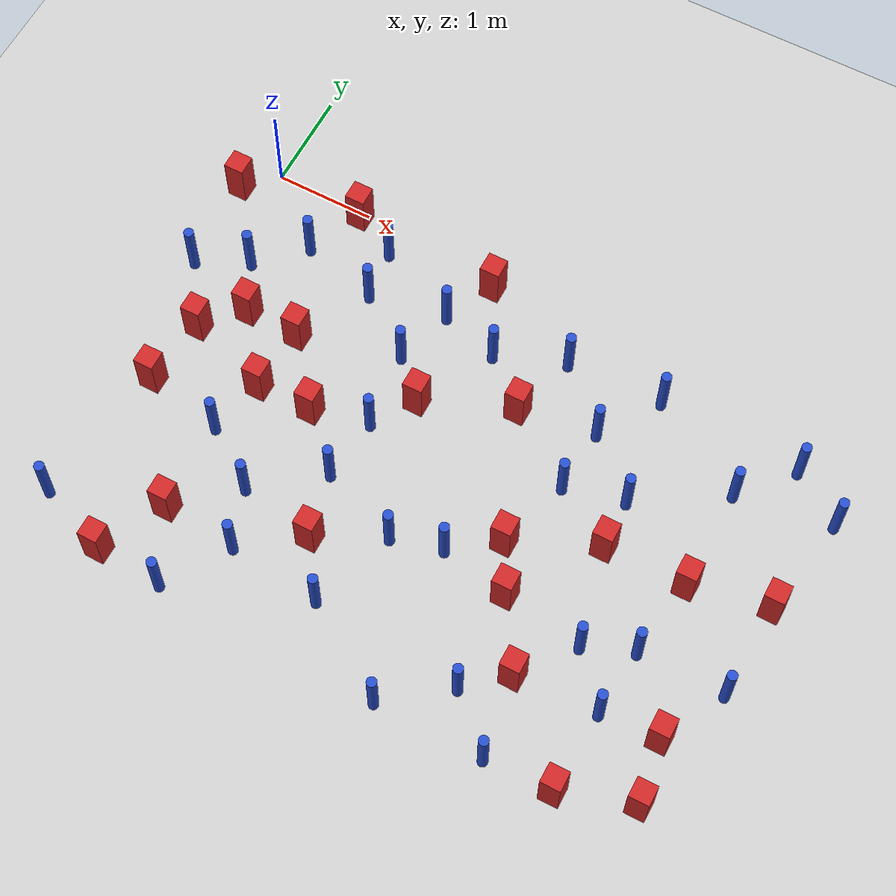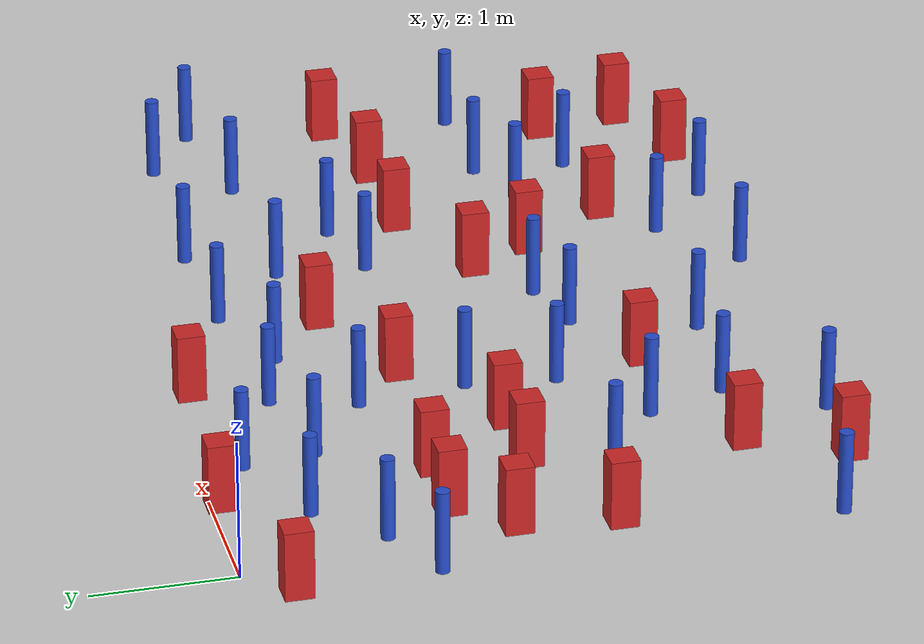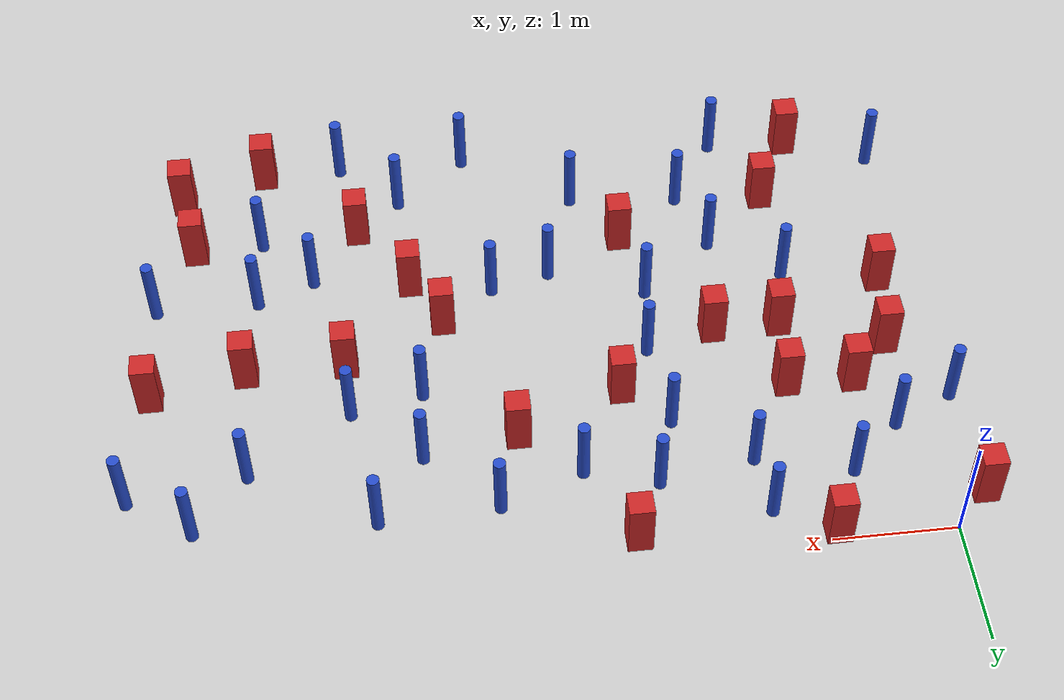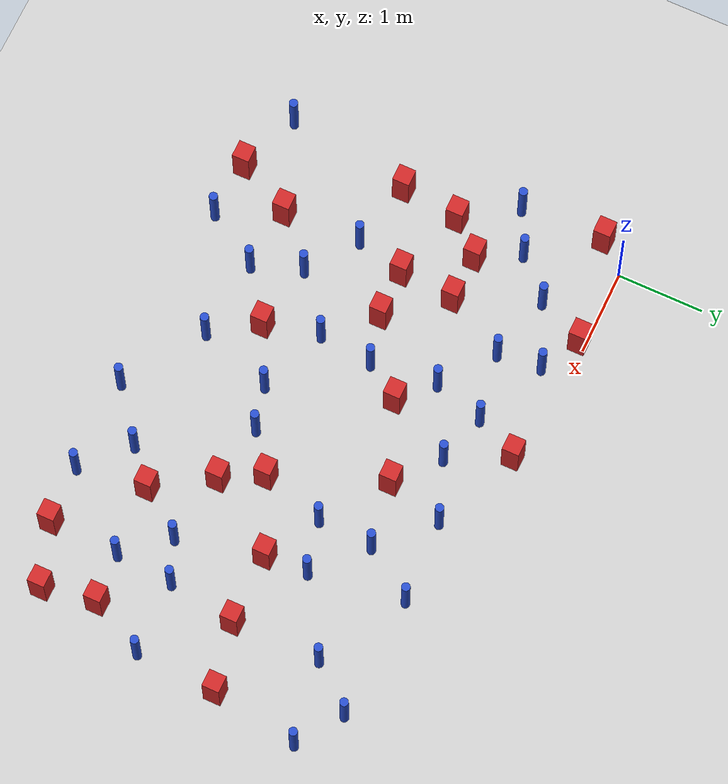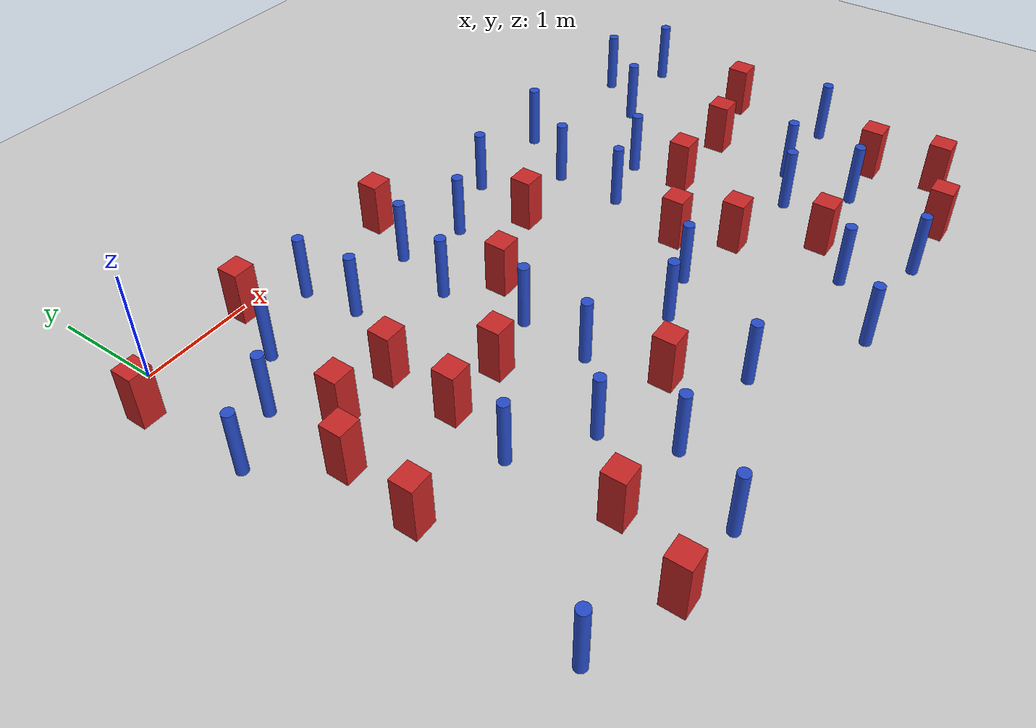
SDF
<sdf version="1.6">
 <world name="default">
  <model name="ground_plane">
   <static>1</static>
   <link name="link">
    <collision name="collision">
     <geometry><plane><normal>0 0 1</normal><size>100 100</size></plane></geometry>
     <surface><friction><ode><mu>100</mu><mu2>50</mu2></ode></friction></surface>
    </collision>
    <visual name="visual">
     <cast_shadows>0</cast_shadows>
     <geometry><plane><normal>0 0 1</normal><size>100 100</size></plane></geometry>
     <material>
      <ambient>1.0 1.0 1.0 1.0</ambient>
      <diffuse>0.8 0.8 0.8 1.0</diffuse>
      <specular>0.01 0.01 0.01 1.000000</specular>
     </material>
    </visual>
   </link>
  </model>
  <model name="pole_obstacle1">
   <static>true</static>
   <pose>5.37700357999 -2.93274806553 -9.47619616065e-06 5.49618799738e-07 2.36310414051e-07 -1.55090534805e-07</pose>
   <link name="link">
    <pose>0 0 0.3 0 -0 0</pose>
    <inertial>
     <mass>1</mass>
     <inertia><ixx>0.145833</ixx><ixy>0</ixy><ixz>0</ixz><iyy>0.145833</iyy><iyz>0</iyz><izz>0.125</izz></inertia>
    </inertial>
    <collision name="collision">
     <geometry><cylinder><radius>0.05</radius><length>.6</length></cylinder></geometry>
    </collision>
    <visual name="visual">
     <geometry><cylinder><radius>0.05</radius><length>.6</length></cylinder></geometry>
     <material>
      <script><name>Gazebo/Blue</name><uri>file://media/materials/scripts/gazebo.material</uri></script>
     </material>
    </visual>
   </link>
  </model>
  <model name="square_post_obstacle11">
   <static>true</static>
   <pose>3.31928973147 -1.26403502904 -6.11067671241e-07 -5.50515727128e-06 -8.79689657224e-07 2.37013304536e-05</pose>
   <link name="link">
    <pose>0 0 0.25 0 -0 0</pose>
    <inertial>
     <mass>100</mass>
     <inertia>
      <ixx>0.166667</ixx>
      <ixy>0</ixy>
      <ixz>0</ixz>
      <iyy>0.166667</iyy>
      <iyz>0</iyz>
      <izz>0.166667</izz>
     </inertia>
    </inertial>
    <collision name="collision"><geometry><box><size>.2 .2 .5</size></box></geometry></collision>
    <visual name="visual">
     <geometry><box><size>.2 .2 .5</size></box></geometry>
     <material>
      <script><name>Gazebo/Red</name><uri>file://media/materials/scripts/gazebo.material</uri></script>
     </material>
    </visual>
   </link>
  </model>
  <model name="pole_obstacle8">
   <static>true</static>
   <pose>-0.241706042491 -1.29657250172 -9.47619616065e-06 5.49618799738e-07 2.36310414065e-07 -1.55090534798e-07</pose>
   <link name="link">
    <pose>0 0 0.3 0 -0 0</pose>
    <inertial>
     <mass>1</mass>
     <inertia><ixx>0.145833</ixx><ixy>0</ixy><ixz>0</ixz><iyy>0.145833</iyy><iyz>0</iyz><izz>0.125</izz></inertia>
    </inertial>
    <collision name="collision">
     <geometry><cylinder><radius>0.05</radius><length>.6</length></cylinder></geometry>
    </collision>
    <visual name="visual">
     <geometry><cylinder><radius>0.05</radius><length>.6</length></cylinder></geometry>
     <material>
      <script><name>Gazebo/Blue</name><uri>file://media/materials/scripts/gazebo.material</uri></script>
     </material>
    </visual>
   </link>
  </model>
  <model name="pole_obstacle9">
   <static>true</static>
   <pose>3.38589451767 -2.86636324832 -9.47619616065e-06 5.49618799737e-07 2.36310414051e-07 -1.55090534807e-07</pose>
   <link name="link">
    <pose>0 0 0.3 0 -0 0</pose>
    <inertial>
     <mass>1</mass>
     <inertia><ixx>0.145833</ixx><ixy>0</ixy><ixz>0</ixz><iyy>0.145833</iyy><iyz>0</iyz><izz>0.125</izz></inertia>
    </inertial>
    <collision name="collision">
     <geometry><cylinder><radius>0.05</radius><length>.6</length></cylinder></geometry>
    </collision>
    <visual name="visual">
     <geometry><cylinder><radius>0.05</radius><length>.6</length></cylinder></geometry>
     <material>
      <script><name>Gazebo/Blue</name><uri>file://media/materials/scripts/gazebo.material</uri></script>
     </material>
    </visual>
   </link>
  </model>
  <model name="pole_obstacle16">
   <static>true</static>
   <pose>1.25358594625 -4.38906292499 -9.47619616065e-06 5.49618799737e-07 2.36310414061e-07 -1.550905348e-07</pose>
   <link name="link">
    <pose>0 0 0.3 0 -0 0</pose>
    <inertial>
     <mass>1</mass>
     <inertia><ixx>0.145833</ixx><ixy>0</ixy><ixz>0</ixz><iyy>0.145833</iyy><iyz>0</iyz><izz>0.125</izz></inertia>
    </inertial>
    <collision name="collision">
     <geometry><cylinder><radius>0.05</radius><length>.6</length></cylinder></geometry>
    </collision>
    <visual name="visual">
     <geometry><cylinder><radius>0.05</radius><length>.6</length></cylinder></geometry>
     <material>
      <script><name>Gazebo/Blue</name><uri>file://media/materials/scripts/gazebo.material</uri></script>
     </material>
    </visual>
   </link>
  </model>
  <model name="pole_obstacle32">
   <static>true</static>
   <pose>1.45785117095 -3.18774533088 -9.47619616065e-06 5.49618799737e-07 2.36310414062e-07 -1.55090534798e-07</pose>
   <link name="link">
    <pose>0 0 0.3 0 -0 0</pose>
    <inertial>
     <mass>1</mass>
     <inertia><ixx>0.145833</ixx><ixy>0</ixy><ixz>0</ixz><iyy>0.145833</iyy><iyz>0</iyz><izz>0.125</izz></inertia>
    </inertial>
    <collision name="collision">
     <geometry><cylinder><radius>0.05</radius><length>.6</length></cylinder></geometry>
    </collision>
    <visual name="visual">
     <geometry><cylinder><radius>0.05</radius><length>.6</length></cylinder></geometry>
     <material>
      <script><name>Gazebo/Blue</name><uri>file://media/materials/scripts/gazebo.material</uri></script>
     </material>
    </visual>
   </link>
  </model>
  <model name="pole_obstacle34">
   <static>true</static>
   <pose>0.882113052516 -2.77304466482 -9.47619616065e-06 5.49618799737e-07 2.36310414066e-07 -1.55090534797e-07</pose>
   <link name="link">
    <pose>0 0 0.3 0 -0 0</pose>
    <inertial>
     <mass>1</mass>
     <inertia><ixx>0.145833</ixx><ixy>0</ixy><ixz>0</ixz><iyy>0.145833</iyy><iyz>0</iyz><izz>0.125</izz></inertia>
    </inertial>
    <collision name="collision">
     <geometry><cylinder><radius>0.05</radius><length>.6</length></cylinder></geometry>
    </collision>
    <visual name="visual">
     <geometry><cylinder><radius>0.05</radius><length>.6</length></cylinder></geometry>
     <material>
      <script><name>Gazebo/Blue</name><uri>file://media/materials/scripts/gazebo.material</uri></script>
     </material>
    </visual>
   </link>
  </model>
  <model name="pole_obstacle41">
   <static>true</static>
   <pose>-0.143354518525 -4.06643775957 -9.47619616065e-06 5.49618799737e-07 2.36310414062e-07 -1.550905348e-07</pose>
   <link name="link">
    <pose>0 0 0.3 0 -0 0</pose>
    <inertial>
     <mass>1</mass>
     <inertia><ixx>0.145833</ixx><ixy>0</ixy><ixz>0</ixz><iyy>0.145833</iyy><iyz>0</iyz><izz>0.125</izz></inertia>
    </inertial>
    <collision name="collision">
     <geometry><cylinder><radius>0.05</radius><length>.6</length></cylinder></geometry>
    </collision>
    <visual name="visual">
     <geometry><cylinder><radius>0.05</radius><length>.6</length></cylinder></geometry>
     <material>
      <script><name>Gazebo/Blue</name><uri>file://media/materials/scripts/gazebo.material</uri></script>
     </material>
    </visual>
   </link>
  </model>
  <model name="square_post_obstacle49">
   <static>true</static>
   <pose>4.49373751798 -3.64777757025 -6.11067671241e-07 -5.50515727128e-06 -8.79689657224e-07 2.37013304536e-05</pose>
   <link name="link">
    <pose>0 0 0.25 0 -0 0</pose>
    <inertial>
     <mass>100</mass>
     <inertia>
      <ixx>0.166667</ixx>
      <ixy>0</ixy>
      <ixz>0</ixz>
      <iyy>0.166667</iyy>
      <iyz>0</iyz>
      <izz>0.166667</izz>
     </inertia>
    </inertial>
    <collision name="collision"><geometry><box><size>.2 .2 .5</size></box></geometry></collision>
    <visual name="visual">
     <geometry><box><size>.2 .2 .5</size></box></geometry>
     <material>
      <script><name>Gazebo/Red</name><uri>file://media/materials/scripts/gazebo.material</uri></script>
     </material>
    </visual>
   </link>
  </model>
  <model name="square_post_obstacle56">
   <static>true</static>
   <pose>1.58765731621 -2.18757301599 -6.11067671241e-07 -5.50515727128e-06 -8.79689657224e-07 2.37013304536e-05</pose>
   <link name="link">
    <pose>0 0 0.25 0 -0 0</pose>
    <inertial>
     <mass>100</mass>
     <inertia>
      <ixx>0.166667</ixx>
      <ixy>0</ixy>
      <ixz>0</ixz>
      <iyy>0.166667</iyy>
      <iyz>0</iyz>
      <izz>0.166667</izz>
     </inertia>
    </inertial>
    <collision name="collision"><geometry><box><size>.2 .2 .5</size></box></geometry></collision>
    <visual name="visual">
     <geometry><box><size>.2 .2 .5</size></box></geometry>
     <material>
      <script><name>Gazebo/Red</name><uri>file://media/materials/scripts/gazebo.material</uri></script>
     </material>
    </visual>
   </link>
  </model>
  <model name="pole_obstacle58">
   <static>true</static>
   <pose>4.89916008259 -3.12728376028 -9.47619616065e-06 5.49618799738e-07 2.36310414051e-07 -1.55090534805e-07</pose>
   <link name="link">
    <pose>0 0 0.3 0 -0 0</pose>
    <inertial>
     <mass>1</mass>
     <inertia><ixx>0.145833</ixx><ixy>0</ixy><ixz>0</ixz><iyy>0.145833</iyy><iyz>0</iyz><izz>0.125</izz></inertia>
    </inertial>
    <collision name="collision">
     <geometry><cylinder><radius>0.05</radius><length>.6</length></cylinder></geometry>
    </collision>
    <visual name="visual">
     <geometry><cylinder><radius>0.05</radius><length>.6</length></cylinder></geometry>
     <material>
      <script><name>Gazebo/Blue</name><uri>file://media/materials/scripts/gazebo.material</uri></script>
     </material>
    </visual>
   </link>
  </model>
  <model name="pole_obstacle72">
   <static>true</static>
   <pose>2.25018198425 -0.684847841973 -9.47619616065e-06 5.49618799738e-07 2.36310414075e-07 -1.55090534793e-07</pose>
   <link name="link">
    <pose>0 0 0.3 0 -0 0</pose>
    <inertial>
     <mass>1</mass>
     <inertia><ixx>0.145833</ixx><ixy>0</ixy><ixz>0</ixz><iyy>0.145833</iyy><iyz>0</iyz><izz>0.125</izz></inertia>
    </inertial>
    <collision name="collision">
     <geometry><cylinder><radius>0.05</radius><length>.6</length></cylinder></geometry>
    </collision>
    <visual name="visual">
     <geometry><cylinder><radius>0.05</radius><length>.6</length></cylinder></geometry>
     <material>
      <script><name>Gazebo/Blue</name><uri>file://media/materials/scripts/gazebo.material</uri></script>
     </material>
    </visual>
   </link>
  </model>
  <model name="square_post_obstacle77">
   <static>true</static>
   <pose>-0.279664580002 -0.315482638421 -6.11067671241e-07 -5.50515727128e-06 -8.79689657224e-07 2.37013304536e-05</pose>
   <link name="link">
    <pose>0 0 0.25 0 -0 0</pose>
    <inertial>
     <mass>100</mass>
     <inertia>
      <ixx>0.166667</ixx>
      <ixy>0</ixy>
      <ixz>0</ixz>
      <iyy>0.166667</iyy>
      <iyz>0</iyz>
      <izz>0.166667</izz>
     </inertia>
    </inertial>
    <collision name="collision"><geometry><box><size>.2 .2 .5</size></box></geometry></collision>
    <visual name="visual">
     <geometry><box><size>.2 .2 .5</size></box></geometry>
     <material>
      <script><name>Gazebo/Red</name><uri>file://media/materials/scripts/gazebo.material</uri></script>
     </material>
    </visual>
   </link>
  </model>
  <model name="square_post_obstacle79">
   <static>true</static>
   <pose>0.522694491097 -1.53337294231 -6.11067671241e-07 -5.50515727128e-06 -8.79689657224e-07 2.37013304536e-05</pose>
   <link name="link">
    <pose>0 0 0.25 0 -0 0</pose>
    <inertial>
     <mass>100</mass>
     <inertia>
      <ixx>0.166667</ixx>
      <ixy>0</ixy>
      <ixz>0</ixz>
      <iyy>0.166667</iyy>
      <iyz>0</iyz>
      <izz>0.166667</izz>
     </inertia>
    </inertial>
    <collision name="collision"><geometry><box><size>.2 .2 .5</size></box></geometry></collision>
    <visual name="visual">
     <geometry><box><size>.2 .2 .5</size></box></geometry>
     <material>
      <script><name>Gazebo/Red</name><uri>file://media/materials/scripts/gazebo.material</uri></script>
     </material>
    </visual>
   </link>
  </model>
  <model name="pole_obstacle80">
   <static>true</static>
   <pose>0.694085313833 -0.628650122394 -9.47619616065e-06 5.49618799737e-07 2.36310414058e-07 -1.55090534802e-07</pose>
   <link name="link">
    <pose>0 0 0.3 0 -0 0</pose>
    <inertial>
     <mass>1</mass>
     <inertia><ixx>0.145833</ixx><ixy>0</ixy><ixz>0</ixz><iyy>0.145833</iyy><iyz>0</iyz><izz>0.125</izz></inertia>
    </inertial>
    <collision name="collision">
     <geometry><cylinder><radius>0.05</radius><length>.6</length></cylinder></geometry>
    </collision>
    <visual name="visual">
     <geometry><cylinder><radius>0.05</radius><length>.6</length></cylinder></geometry>
     <material>
      <script><name>Gazebo/Blue</name><uri>file://media/materials/scripts/gazebo.material</uri></script>
     </material>
    </visual>
   </link>
  </model>
  <model name="square_post_obstacle80">
   <static>true</static>
   <pose>3.82988105999 -2.5300809873 -6.11067671241e-07 -5.50515727128e-06 -8.79689657224e-07 2.37013304536e-05</pose>
   <link name="link">
    <pose>0 0 0.25 0 -0 0</pose>
    <inertial>
     <mass>100</mass>
     <inertia>
      <ixx>0.166667</ixx>
      <ixy>0</ixy>
      <ixz>0</ixz>
      <iyy>0.166667</iyy>
      <iyz>0</iyz>
      <izz>0.166667</izz>
     </inertia>
    </inertial>
    <collision name="collision"><geometry><box><size>.2 .2 .5</size></box></geometry></collision>
    <visual name="visual">
     <geometry><box><size>.2 .2 .5</size></box></geometry>
     <material>
      <script><name>Gazebo/Red</name><uri>file://media/materials/scripts/gazebo.material</uri></script>
     </material>
    </visual>
   </link>
  </model>
  <model name="square_post_obstacle82">
   <static>true</static>
   <pose>5.99754338953 -4.18395722825 -6.11067671241e-07 -5.50515727128e-06 -8.79689657224e-07 2.37013304536e-05</pose>
   <link name="link">
    <pose>0 0 0.25 0 -0 0</pose>
    <inertial>
     <mass>100</mass>
     <inertia>
      <ixx>0.166667</ixx>
      <ixy>0</ixy>
      <ixz>0</ixz>
      <iyy>0.166667</iyy>
      <iyz>0</iyz>
      <izz>0.166667</izz>
     </inertia>
    </inertial>
    <collision name="collision"><geometry><box><size>.2 .2 .5</size></box></geometry></collision>
    <visual name="visual">
     <geometry><box><size>.2 .2 .5</size></box></geometry>
     <material>
      <script><name>Gazebo/Red</name><uri>file://media/materials/scripts/gazebo.material</uri></script>
     </material>
    </visual>
   </link>
  </model>
  <model name="pole_obstacle90">
   <static>true</static>
   <pose>4.09361953625 -1.14212410549 -9.47619616065e-06 5.49618799738e-07 2.36310414071e-07 -1.55090534796e-07</pose>
   <link name="link">
    <pose>0 0 0.3 0 -0 0</pose>
    <inertial>
     <mass>1</mass>
     <inertia><ixx>0.145833</ixx><ixy>0</ixy><ixz>0</ixz><iyy>0.145833</iyy><iyz>0</iyz><izz>0.125</izz></inertia>
    </inertial>
    <collision name="collision">
     <geometry><cylinder><radius>0.05</radius><length>.6</length></cylinder></geometry>
    </collision>
    <visual name="visual">
     <geometry><cylinder><radius>0.05</radius><length>.6</length></cylinder></geometry>
     <material>
      <script><name>Gazebo/Blue</name><uri>file://media/materials/scripts/gazebo.material</uri></script>
     </material>
    </visual>
   </link>
  </model>
  <model name="pole_obstacle95">
   <static>true</static>
   <pose>4.64786862632 -1.64524315254 -9.47619616065e-06 5.49618799738e-07 2.36310414071e-07 -1.55090534796e-07</pose>
   <link name="link">
    <pose>0 0 0.3 0 -0 0</pose>
    <inertial>
     <mass>1</mass>
     <inertia><ixx>0.145833</ixx><ixy>0</ixy><ixz>0</ixz><iyy>0.145833</iyy><iyz>0</iyz><izz>0.125</izz></inertia>
    </inertial>
    <collision name="collision">
     <geometry><cylinder><radius>0.05</radius><length>.6</length></cylinder></geometry>
    </collision>
    <visual name="visual">
     <geometry><cylinder><radius>0.05</radius><length>.6</length></cylinder></geometry>
     <material>
      <script><name>Gazebo/Blue</name><uri>file://media/materials/scripts/gazebo.material</uri></script>
     </material>
    </visual>
   </link>
  </model>
  <model name="square_post_obstacle86">
   <static>true</static>
   <pose>0.580912777025 -4.33777582175 -6.11067671241e-07 -5.50515727128e-06 -8.79689657224e-07 2.37013304536e-05</pose>
   <link name="link">
    <pose>0 0 0.25 0 -0 0</pose>
    <inertial>
     <mass>100</mass>
     <inertia>
      <ixx>0.166667</ixx>
      <ixy>0</ixy>
      <ixz>0</ixz>
      <iyy>0.166667</iyy>
      <iyz>0</iyz>
      <izz>0.166667</izz>
     </inertia>
    </inertial>
    <collision name="collision"><geometry><box><size>.2 .2 .5</size></box></geometry></collision>
    <visual name="visual">
     <geometry><box><size>.2 .2 .5</size></box></geometry>
     <material>
      <script><name>Gazebo/Red</name><uri>file://media/materials/scripts/gazebo.material</uri></script>
     </material>
    </visual>
   </link>
  </model>
  <model name="pole_obstacle104">
   <static>true</static>
   <pose>5.92827067952 -0.608783731782 -9.47619616065e-06 5.49618799737e-07 2.36310414061e-07 -1.550905348e-07</pose>
   <link name="link">
    <pose>0 0 0.3 0 -0 0</pose>
    <inertial>
     <mass>1</mass>
     <inertia><ixx>0.145833</ixx><ixy>0</ixy><ixz>0</ixz><iyy>0.145833</iyy><iyz>0</iyz><izz>0.125</izz></inertia>
    </inertial>
    <collision name="collision">
     <geometry><cylinder><radius>0.05</radius><length>.6</length></cylinder></geometry>
    </collision>
    <visual name="visual">
     <geometry><cylinder><radius>0.05</radius><length>.6</length></cylinder></geometry>
     <material>
      <script><name>Gazebo/Blue</name><uri>file://media/materials/scripts/gazebo.material</uri></script>
     </material>
    </visual>
   </link>
  </model>
  <model name="square_post_obstacle93">
   <static>true</static>
   <pose>0.178467452724 -1.90255607112 -6.11067671241e-07 -5.50515727128e-06 -8.79689657224e-07 2.37013304536e-05</pose>
   <link name="link">
    <pose>0 0 0.25 0 -0 0</pose>
    <inertial>
     <mass>100</mass>
     <inertia>
      <ixx>0.166667</ixx>
      <ixy>0</ixy>
      <ixz>0</ixz>
      <iyy>0.166667</iyy>
      <iyz>0</iyz>
      <izz>0.166667</izz>
     </inertia>
    </inertial>
    <collision name="collision"><geometry><box><size>.2 .2 .5</size></box></geometry></collision>
    <visual name="visual">
     <geometry><box><size>.2 .2 .5</size></box></geometry>
     <material>
      <script><name>Gazebo/Red</name><uri>file://media/materials/scripts/gazebo.material</uri></script>
     </material>
    </visual>
   </link>
  </model>
  <model name="pole_obstacle110">
   <static>true</static>
   <pose>1.41122168382 -0.320011906606 -9.47619616065e-06 5.49618799737e-07 2.36310414064e-07 -1.55090534799e-07</pose>
   <link name="link">
    <pose>0 0 0.3 0 -0 0</pose>
    <inertial>
     <mass>1</mass>
     <inertia><ixx>0.145833</ixx><ixy>0</ixy><ixz>0</ixz><iyy>0.145833</iyy><iyz>0</iyz><izz>0.125</izz></inertia>
    </inertial>
    <collision name="collision">
     <geometry><cylinder><radius>0.05</radius><length>.6</length></cylinder></geometry>
    </collision>
    <visual name="visual">
     <geometry><cylinder><radius>0.05</radius><length>.6</length></cylinder></geometry>
     <material>
      <script><name>Gazebo/Blue</name><uri>file://media/materials/scripts/gazebo.material</uri></script>
     </material>
    </visual>
   </link>
  </model>
  <model name="pole_obstacle112">
   <static>true</static>
   <pose>6.44710791961 -0.959901073612 -9.47619616065e-06 5.49618799738e-07 2.36310414063e-07 -1.55090534799e-07</pose>
   <link name="link">
    <pose>0 0 0.3 0 -0 0</pose>
    <inertial>
     <mass>1</mass>
     <inertia><ixx>0.145833</ixx><ixy>0</ixy><ixz>0</ixz><iyy>0.145833</iyy><iyz>0</iyz><izz>0.125</izz></inertia>
    </inertial>
    <collision name="collision">
     <geometry><cylinder><radius>0.05</radius><length>.6</length></cylinder></geometry>
    </collision>
    <visual name="visual">
     <geometry><cylinder><radius>0.05</radius><length>.6</length></cylinder></geometry>
     <material>
      <script><name>Gazebo/Blue</name><uri>file://media/materials/scripts/gazebo.material</uri></script>
     </material>
    </visual>
   </link>
  </model>
  <model name="square_post_obstacle100">
   <static>true</static>
   <pose>6.26977508944 -1.9743979847 -6.11067671241e-07 -5.50515727128e-06 -8.79689657224e-07 2.37013304536e-05</pose>
   <link name="link">
    <pose>0 0 0.25 0 -0 0</pose>
    <inertial>
     <mass>100</mass>
     <inertia>
      <ixx>0.166667</ixx>
      <ixy>0</ixy>
      <ixz>0</ixz>
      <iyy>0.166667</iyy>
      <iyz>0</iyz>
      <izz>0.166667</izz>
     </inertia>
    </inertial>
    <collision name="collision"><geometry><box><size>.2 .2 .5</size></box></geometry></collision>
    <visual name="visual">
     <geometry><box><size>.2 .2 .5</size></box></geometry>
     <material>
      <script><name>Gazebo/Red</name><uri>file://media/materials/scripts/gazebo.material</uri></script>
     </material>
    </visual>
   </link>
  </model>
  <model name="pole_obstacle118">
   <static>true</static>
   <pose>1.46849236786 -0.829524030992 -9.47619616065e-06 5.49618799737e-07 2.36310414065e-07 -1.55090534798e-07</pose>
   <link name="link">
    <pose>0 0 0.3 0 -0 0</pose>
    <inertial>
     <mass>1</mass>
     <inertia><ixx>0.145833</ixx><ixy>0</ixy><ixz>0</ixz><iyy>0.145833</iyy><iyz>0</iyz><izz>0.125</izz></inertia>
    </inertial>
    <collision name="collision">
     <geometry><cylinder><radius>0.05</radius><length>.6</length></cylinder></geometry>
    </collision>
    <visual name="visual">
     <geometry><cylinder><radius>0.05</radius><length>.6</length></cylinder></geometry>
     <material>
      <script><name>Gazebo/Blue</name><uri>file://media/materials/scripts/gazebo.material</uri></script>
     </material>
    </visual>
   </link>
  </model>
  <model name="square_post_obstacle105">
   <static>true</static>
   <pose>0.0902161426917 -2.59700466391 -6.11067671241e-07 -5.50515727128e-06 -8.79689657224e-07 2.37013304536e-05</pose>
   <link name="link">
    <pose>0 0 0.25 0 -0 0</pose>
    <inertial>
     <mass>100</mass>
     <inertia>
      <ixx>0.166667</ixx>
      <ixy>0</ixy>
      <ixz>0</ixz>
      <iyy>0.166667</iyy>
      <iyz>0</iyz>
      <izz>0.166667</izz>
     </inertia>
    </inertial>
    <collision name="collision"><geometry><box><size>.2 .2 .5</size></box></geometry></collision>
    <visual name="visual">
     <geometry><box><size>.2 .2 .5</size></box></geometry>
     <material>
      <script><name>Gazebo/Red</name><uri>file://media/materials/scripts/gazebo.material</uri></script>
     </material>
    </visual>
   </link>
  </model>
  <model name="square_post_obstacle108">
   <static>true</static>
   <pose>2.23318849477 -3.32882843515 -6.11067671241e-07 -5.50515727128e-06 -8.79689657224e-07 2.37013304536e-05</pose>
   <link name="link">
    <pose>0 0 0.25 0 -0 0</pose>
    <inertial>
     <mass>100</mass>
     <inertia>
      <ixx>0.166667</ixx>
      <ixy>0</ixy>
      <ixz>0</ixz>
      <iyy>0.166667</iyy>
      <iyz>0</iyz>
      <izz>0.166667</izz>
     </inertia>
    </inertial>
    <collision name="collision"><geometry><box><size>.2 .2 .5</size></box></geometry></collision>
    <visual name="visual">
     <geometry><box><size>.2 .2 .5</size></box></geometry>
     <material>
      <script><name>Gazebo/Red</name><uri>file://media/materials/scripts/gazebo.material</uri></script>
     </material>
    </visual>
   </link>
  </model>
  <model name="pole_obstacle128">
   <static>true</static>
   <pose>2.15647524984 -2.05067412387 -9.47619616065e-06 5.49618799737e-07 2.36310414051e-07 -1.55090534807e-07</pose>
   <link name="link">
    <pose>0 0 0.3 0 -0 0</pose>
    <inertial>
     <mass>1</mass>
     <inertia><ixx>0.145833</ixx><ixy>0</ixy><ixz>0</ixz><iyy>0.145833</iyy><iyz>0</iyz><izz>0.125</izz></inertia>
    </inertial>
    <collision name="collision">
     <geometry><cylinder><radius>0.05</radius><length>.6</length></cylinder></geometry>
    </collision>
    <visual name="visual">
     <geometry><cylinder><radius>0.05</radius><length>.6</length></cylinder></geometry>
     <material>
      <script><name>Gazebo/Blue</name><uri>file://media/materials/scripts/gazebo.material</uri></script>
     </material>
    </visual>
   </link>
  </model>
  <model name="pole_obstacle133">
   <static>true</static>
   <pose>2.08403045886 -2.68757567244 -9.47619616065e-06 5.49618799737e-07 2.36310414051e-07 -1.55090534807e-07</pose>
   <link name="link">
    <pose>0 0 0.3 0 -0 0</pose>
    <inertial>
     <mass>1</mass>
     <inertia><ixx>0.145833</ixx><ixy>0</ixy><ixz>0</ixz><iyy>0.145833</iyy><iyz>0</iyz><izz>0.125</izz></inertia>
    </inertial>
    <collision name="collision">
     <geometry><cylinder><radius>0.05</radius><length>.6</length></cylinder></geometry>
    </collision>
    <visual name="visual">
     <geometry><cylinder><radius>0.05</radius><length>.6</length></cylinder></geometry>
     <material>
      <script><name>Gazebo/Blue</name><uri>file://media/materials/scripts/gazebo.material</uri></script>
     </material>
    </visual>
   </link>
  </model>
  <model name="square_post_obstacle115">
   <static>true</static>
   <pose>0.914401167572 -3.68559690968 -6.11067671241e-07 -5.50515727128e-06 -8.79689657224e-07 2.37013304536e-05</pose>
   <link name="link">
    <pose>0 0 0.25 0 -0 0</pose>
    <inertial>
     <mass>100</mass>
     <inertia>
      <ixx>0.166667</ixx>
      <ixy>0</ixy>
      <ixz>0</ixz>
      <iyy>0.166667</iyy>
      <iyz>0</iyz>
      <izz>0.166667</izz>
     </inertia>
    </inertial>
    <collision name="collision"><geometry><box><size>.2 .2 .5</size></box></geometry></collision>
    <visual name="visual">
     <geometry><box><size>.2 .2 .5</size></box></geometry>
     <material>
      <script><name>Gazebo/Red</name><uri>file://media/materials/scripts/gazebo.material</uri></script>
     </material>
    </visual>
   </link>
  </model>
  <model name="pole_obstacle136">
   <static>true</static>
   <pose>6.23715963843 -2.92666798656 -9.47619616065e-06 5.49618799738e-07 2.36310414051e-07 -1.55090534805e-07</pose>
   <link name="link">
    <pose>0 0 0.3 0 -0 0</pose>
    <inertial>
     <mass>1</mass>
     <inertia><ixx>0.145833</ixx><ixy>0</ixy><ixz>0</ixz><iyy>0.145833</iyy><iyz>0</iyz><izz>0.125</izz></inertia>
    </inertial>
    <collision name="collision">
     <geometry><cylinder><radius>0.05</radius><length>.6</length></cylinder></geometry>
    </collision>
    <visual name="visual">
     <geometry><cylinder><radius>0.05</radius><length>.6</length></cylinder></geometry>
     <material>
      <script><name>Gazebo/Blue</name><uri>file://media/materials/scripts/gazebo.material</uri></script>
     </material>
    </visual>
   </link>
  </model>
  <model name="square_post_obstacle125">
   <static>true</static>
   <pose>1.07486795467 -1.54721506109 -6.11067671241e-07 -5.50515727128e-06 -8.79689657224e-07 2.37013304536e-05</pose>
   <link name="link">
    <pose>0 0 0.25 0 -0 0</pose>
    <inertial>
     <mass>100</mass>
     <inertia>
      <ixx>0.166667</ixx>
      <ixy>0</ixy>
      <ixz>0</ixz>
      <iyy>0.166667</iyy>
      <iyz>0</iyz>
      <izz>0.166667</izz>
     </inertia>
    </inertial>
    <collision name="collision"><geometry><box><size>.2 .2 .5</size></box></geometry></collision>
    <visual name="visual">
     <geometry><box><size>.2 .2 .5</size></box></geometry>
     <material>
      <script><name>Gazebo/Red</name><uri>file://media/materials/scripts/gazebo.material</uri></script>
     </material>
    </visual>
   </link>
  </model>
  <model name="square_post_obstacle126">
   <static>true</static>
   <pose>4.6625406094 -2.14819203065 -6.11067671241e-07 -5.50515727128e-06 -8.79689657224e-07 2.37013304536e-05</pose>
   <link name="link">
    <pose>0 0 0.25 0 -0 0</pose>
    <inertial>
     <mass>100</mass>
     <inertia>
      <ixx>0.166667</ixx>
      <ixy>0</ixy>
      <ixz>0</ixz>
      <iyy>0.166667</iyy>
      <iyz>0</iyz>
      <izz>0.166667</izz>
     </inertia>
    </inertial>
    <collision name="collision"><geometry><box><size>.2 .2 .5</size></box></geometry></collision>
    <visual name="visual">
     <geometry><box><size>.2 .2 .5</size></box></geometry>
     <material>
      <script><name>Gazebo/Red</name><uri>file://media/materials/scripts/gazebo.material</uri></script>
     </material>
    </visual>
   </link>
  </model>
  <model name="pole_obstacle143">
   <static>true</static>
   <pose>5.49290556536 -1.11219267034 -9.47619616065e-06 5.49618799738e-07 2.36310414071e-07 -1.55090534796e-07</pose>
   <link name="link">
    <pose>0 0 0.3 0 -0 0</pose>
    <inertial>
     <mass>1</mass>
     <inertia><ixx>0.145833</ixx><ixy>0</ixy><ixz>0</ixz><iyy>0.145833</iyy><iyz>0</iyz><izz>0.125</izz></inertia>
    </inertial>
    <collision name="collision">
     <geometry><cylinder><radius>0.05</radius><length>.6</length></cylinder></geometry>
    </collision>
    <visual name="visual">
     <geometry><cylinder><radius>0.05</radius><length>.6</length></cylinder></geometry>
     <material>
      <script><name>Gazebo/Blue</name><uri>file://media/materials/scripts/gazebo.material</uri></script>
     </material>
    </visual>
   </link>
  </model>
  <model name="square_post_obstacle133">
   <static>true</static>
   <pose>2.43304405676 -1.62788863366 -6.11067671241e-07 -5.50515727128e-06 -8.79689657224e-07 2.37013304536e-05</pose>
   <link name="link">
    <pose>0 0 0.25 0 -0 0</pose>
    <inertial>
     <mass>100</mass>
     <inertia>
      <ixx>0.166667</ixx>
      <ixy>0</ixy>
      <ixz>0</ixz>
      <iyy>0.166667</iyy>
      <iyz>0</iyz>
      <izz>0.166667</izz>
     </inertia>
    </inertial>
    <collision name="collision"><geometry><box><size>.2 .2 .5</size></box></geometry></collision>
    <visual name="visual">
     <geometry><box><size>.2 .2 .5</size></box></geometry>
     <material>
      <script><name>Gazebo/Red</name><uri>file://media/materials/scripts/gazebo.material</uri></script>
     </material>
    </visual>
   </link>
  </model>
  <model name="square_post_obstacle136">
   <static>true</static>
   <pose>2.49179553282 -0.178526262418 -6.11067671241e-07 -5.50515727128e-06 -8.79689657224e-07 2.37013304536e-05</pose>
   <link name="link">
    <pose>0 0 0.25 0 -0 0</pose>
    <inertial>
     <mass>100</mass>
     <inertia>
      <ixx>0.166667</ixx>
      <ixy>0</ixy>
      <ixz>0</ixz>
      <iyy>0.166667</iyy>
      <iyz>0</iyz>
      <izz>0.166667</izz>
     </inertia>
    </inertial>
    <collision name="collision"><geometry><box><size>.2 .2 .5</size></box></geometry></collision>
    <visual name="visual">
     <geometry><box><size>.2 .2 .5</size></box></geometry>
     <material>
      <script><name>Gazebo/Red</name><uri>file://media/materials/scripts/gazebo.material</uri></script>
     </material>
    </visual>
   </link>
  </model>
  <model name="pole_obstacle148">
   <static>true</static>
   <pose>3.5188135582 -4.44885292871 -9.47619616065e-06 5.49618799738e-07 2.3631041406e-07 -1.55090534801e-07</pose>
   <link name="link">
    <pose>0 0 0.3 0 -0 0</pose>
    <inertial>
     <mass>1</mass>
     <inertia><ixx>0.145833</ixx><ixy>0</ixy><ixz>0</ixz><iyy>0.145833</iyy><iyz>0</iyz><izz>0.125</izz></inertia>
    </inertial>
    <collision name="collision">
     <geometry><cylinder><radius>0.05</radius><length>.6</length></cylinder></geometry>
    </collision>
    <visual name="visual">
     <geometry><cylinder><radius>0.05</radius><length>.6</length></cylinder></geometry>
     <material>
      <script><name>Gazebo/Blue</name><uri>file://media/materials/scripts/gazebo.material</uri></script>
     </material>
    </visual>
   </link>
  </model>
  <model name="pole_obstacle149">
   <static>true</static>
   <pose>0.262521632053 -1.05101746403 -9.47619616065e-06 5.49618799737e-07 2.36310414064e-07 -1.55090534797e-07</pose>
   <link name="link">
    <pose>0 0 0.3 0 -0 0</pose>
    <inertial>
     <mass>1</mass>
     <inertia><ixx>0.145833</ixx><ixy>0</ixy><ixz>0</ixz><iyy>0.145833</iyy><iyz>0</iyz><izz>0.125</izz></inertia>
    </inertial>
    <collision name="collision">
     <geometry><cylinder><radius>0.05</radius><length>.6</length></cylinder></geometry>
    </collision>
    <visual name="visual">
     <geometry><cylinder><radius>0.05</radius><length>.6</length></cylinder></geometry>
     <material>
      <script><name>Gazebo/Blue</name><uri>file://media/materials/scripts/gazebo.material</uri></script>
     </material>
    </visual>
   </link>
  </model>
  <model name="pole_obstacle150">
   <static>true</static>
   <pose>4.61474645966 -4.45674706294 -9.47619616065e-06 5.49618799737e-07 2.36310414037e-07 -1.55090534814e-07</pose>
   <link name="link">
    <pose>0 0 0.3 0 -0 0</pose>
    <inertial>
     <mass>1</mass>
     <inertia><ixx>0.145833</ixx><ixy>0</ixy><ixz>0</ixz><iyy>0.145833</iyy><iyz>0</iyz><izz>0.125</izz></inertia>
    </inertial>
    <collision name="collision">
     <geometry><cylinder><radius>0.05</radius><length>.6</length></cylinder></geometry>
    </collision>
    <visual name="visual">
     <geometry><cylinder><radius>0.05</radius><length>.6</length></cylinder></geometry>
     <material>
      <script><name>Gazebo/Blue</name><uri>file://media/materials/scripts/gazebo.material</uri></script>
     </material>
    </visual>
   </link>
  </model>
  <model name="square_post_obstacle149">
   <static>true</static>
   <pose>5.28247314743 -4.42588056597 -6.11067671241e-07 -5.50515727128e-06 -8.79689657224e-07 2.37013304536e-05</pose>
   <link name="link">
    <pose>0 0 0.25 0 -0 0</pose>
    <inertial>
     <mass>100</mass>
     <inertia>
      <ixx>0.166667</ixx>
      <ixy>0</ixy>
      <ixz>0</ixz>
      <iyy>0.166667</iyy>
      <iyz>0</iyz>
      <izz>0.166667</izz>
     </inertia>
    </inertial>
    <collision name="collision"><geometry><box><size>.2 .2 .5</size></box></geometry></collision>
    <visual name="visual">
     <geometry><box><size>.2 .2 .5</size></box></geometry>
     <material>
      <script><name>Gazebo/Red</name><uri>file://media/materials/scripts/gazebo.material</uri></script>
     </material>
    </visual>
   </link>
  </model>
  <model name="pole_obstacle157">
   <static>true</static>
   <pose>2.59336456774 -3.85375881032 -9.47619616065e-06 5.49618799737e-07 2.36310414051e-07 -1.55090534807e-07</pose>
   <link name="link">
    <pose>0 0 0.3 0 -0 0</pose>
    <inertial>
     <mass>1</mass>
     <inertia><ixx>0.145833</ixx><ixy>0</ixy><ixz>0</ixz><iyy>0.145833</iyy><iyz>0</iyz><izz>0.125</izz></inertia>
    </inertial>
    <collision name="collision">
     <geometry><cylinder><radius>0.05</radius><length>.6</length></cylinder></geometry>
    </collision>
    <visual name="visual">
     <geometry><cylinder><radius>0.05</radius><length>.6</length></cylinder></geometry>
     <material>
      <script><name>Gazebo/Blue</name><uri>file://media/materials/scripts/gazebo.material</uri></script>
     </material>
    </visual>
   </link>
  </model>
  <model name="pole_obstacle168">
   <static>true</static>
   <pose>5.32546212557 -3.60823954455 -9.47619616065e-06 5.49618799738e-07 2.36310414051e-07 -1.55090534805e-07</pose>
   <link name="link">
    <pose>0 0 0.3 0 -0 0</pose>
    <inertial>
     <mass>1</mass>
     <inertia><ixx>0.145833</ixx><ixy>0</ixy><ixz>0</ixz><iyy>0.145833</iyy><iyz>0</iyz><izz>0.125</izz></inertia>
    </inertial>
    <collision name="collision">
     <geometry><cylinder><radius>0.05</radius><length>.6</length></cylinder></geometry>
    </collision>
    <visual name="visual">
     <geometry><cylinder><radius>0.05</radius><length>.6</length></cylinder></geometry>
     <material>
      <script><name>Gazebo/Blue</name><uri>file://media/materials/scripts/gazebo.material</uri></script>
     </material>
    </visual>
   </link>
  </model>
  <model name="pole_obstacle173">
   <static>true</static>
   <pose>4.1193055557 -3.98819870663 -9.47619616065e-06 5.49618799737e-07 2.36310414056e-07 -1.55090534802e-07</pose>
   <link name="link">
    <pose>0 0 0.3 0 -0 0</pose>
    <inertial>
     <mass>1</mass>
     <inertia><ixx>0.145833</ixx><ixy>0</ixy><ixz>0</ixz><iyy>0.145833</iyy><iyz>0</iyz><izz>0.125</izz></inertia>
    </inertial>
    <collision name="collision">
     <geometry><cylinder><radius>0.05</radius><length>.6</length></cylinder></geometry>
    </collision>
    <visual name="visual">
     <geometry><cylinder><radius>0.05</radius><length>.6</length></cylinder></geometry>
     <material>
      <script><name>Gazebo/Blue</name><uri>file://media/materials/scripts/gazebo.material</uri></script>
     </material>
    </visual>
   </link>
  </model>
  <model name="square_post_obstacle164">
   <static>true</static>
   <pose>5.89871488586 -3.56323572961 -6.11067671241e-07 -5.50515727128e-06 -8.79689657224e-07 2.37013304536e-05</pose>
   <link name="link">
    <pose>0 0 0.25 0 -0 0</pose>
    <inertial>
     <mass>100</mass>
     <inertia>
      <ixx>0.166667</ixx>
      <ixy>0</ixy>
      <ixz>0</ixz>
      <iyy>0.166667</iyy>
      <iyz>0</iyz>
      <izz>0.166667</izz>
     </inertia>
    </inertial>
    <collision name="collision"><geometry><box><size>.2 .2 .5</size></box></geometry></collision>
    <visual name="visual">
     <geometry><box><size>.2 .2 .5</size></box></geometry>
     <material>
      <script><name>Gazebo/Red</name><uri>file://media/materials/scripts/gazebo.material</uri></script>
     </material>
    </visual>
   </link>
  </model>
  <model name="pole_obstacle183">
   <static>true</static>
   <pose>2.07017304074 -1.27768802685 -9.47619616065e-06 5.49618799737e-07 2.36310414072e-07 -1.55090534793e-07</pose>
   <link name="link">
    <pose>0 0 0.3 0 -0 0</pose>
    <inertial>
     <mass>1</mass>
     <inertia><ixx>0.145833</ixx><ixy>0</ixy><ixz>0</ixz><iyy>0.145833</iyy><iyz>0</iyz><izz>0.125</izz></inertia>
    </inertial>
    <collision name="collision">
     <geometry><cylinder><radius>0.05</radius><length>.6</length></cylinder></geometry>
    </collision>
    <visual name="visual">
     <geometry><cylinder><radius>0.05</radius><length>.6</length></cylinder></geometry>
     <material>
      <script><name>Gazebo/Blue</name><uri>file://media/materials/scripts/gazebo.material</uri></script>
     </material>
    </visual>
   </link>
  </model>
  <model name="pole_obstacle185">
   <static>true</static>
   <pose>1.65901825525 -3.75696672581 -9.47619616065e-06 5.49618799737e-07 2.36310414062e-07 -1.55090534798e-07</pose>
   <link name="link">
    <pose>0 0 0.3 0 -0 0</pose>
    <inertial>
     <mass>1</mass>
     <inertia><ixx>0.145833</ixx><ixy>0</ixy><ixz>0</ixz><iyy>0.145833</iyy><iyz>0</iyz><izz>0.125</izz></inertia>
    </inertial>
    <collision name="collision">
     <geometry><cylinder><radius>0.05</radius><length>.6</length></cylinder></geometry>
    </collision>
    <visual name="visual">
     <geometry><cylinder><radius>0.05</radius><length>.6</length></cylinder></geometry>
     <material>
      <script><name>Gazebo/Blue</name><uri>file://media/materials/scripts/gazebo.material</uri></script>
     </material>
    </visual>
   </link>
  </model>
  <model name="square_post_obstacle173">
   <static>true</static>
   <pose>1.02619357783 -2.19610048863 -6.11067671241e-07 -5.50515727128e-06 -8.79689657224e-07 2.37013304536e-05</pose>
   <link name="link">
    <pose>0 0 0.25 0 -0 0</pose>
    <inertial>
     <mass>100</mass>
     <inertia>
      <ixx>0.166667</ixx>
      <ixy>0</ixy>
      <ixz>0</ixz>
      <iyy>0.166667</iyy>
      <iyz>0</iyz>
      <izz>0.166667</izz>
     </inertia>
    </inertial>
    <collision name="collision"><geometry><box><size>.2 .2 .5</size></box></geometry></collision>
    <visual name="visual">
     <geometry><box><size>.2 .2 .5</size></box></geometry>
     <material>
      <script><name>Gazebo/Red</name><uri>file://media/materials/scripts/gazebo.material</uri></script>
     </material>
    </visual>
   </link>
  </model>
  <model name="square_post_obstacle198">
   <static>true</static>
   <pose>4.07664539029 -2.99148942365 -6.11067671241e-07 -5.50515727128e-06 -8.79689657224e-07 2.37013304536e-05</pose>
   <link name="link">
    <pose>0 0 0.25 0 -0 0</pose>
    <inertial>
     <mass>100</mass>
     <inertia>
      <ixx>0.166667</ixx>
      <ixy>0</ixy>
      <ixz>0</ixz>
      <iyy>0.166667</iyy>
      <iyz>0</iyz>
      <izz>0.166667</izz>
     </inertia>
    </inertial>
    <collision name="collision"><geometry><box><size>.2 .2 .5</size></box></geometry></collision>
    <visual name="visual">
     <geometry><box><size>.2 .2 .5</size></box></geometry>
     <material>
      <script><name>Gazebo/Red</name><uri>file://media/materials/scripts/gazebo.material</uri></script>
     </material>
    </visual>
   </link>
  </model>
  <model name="pole_obstacle205">
   <static>true</static>
   <pose>2.84016248566 -0.856658349004 -9.47619616065e-06 5.49618799738e-07 2.36310414075e-07 -1.55090534793e-07</pose>
   <link name="link">
    <pose>0 0 0.3 0 -0 0</pose>
    <inertial>
     <mass>1</mass>
     <inertia><ixx>0.145833</ixx><ixy>0</ixy><ixz>0</ixz><iyy>0.145833</iyy><iyz>0</iyz><izz>0.125</izz></inertia>
    </inertial>
    <collision name="collision">
     <geometry><cylinder><radius>0.05</radius><length>.6</length></cylinder></geometry>
    </collision>
    <visual name="visual">
     <geometry><cylinder><radius>0.05</radius><length>.6</length></cylinder></geometry>
     <material>
      <script><name>Gazebo/Blue</name><uri>file://media/materials/scripts/gazebo.material</uri></script>
     </material>
    </visual>
   </link>
  </model>
  <model name="pole_obstacle208">
   <static>true</static>
   <pose>4.48954567268 -0.55088674492 -9.47619616065e-06 5.49618799737e-07 2.36310414061e-07 -1.550905348e-07</pose>
   <link name="link">
    <pose>0 0 0.3 0 -0 0</pose>
    <inertial>
     <mass>1</mass>
     <inertia><ixx>0.145833</ixx><ixy>0</ixy><ixz>0</ixz><iyy>0.145833</iyy><iyz>0</iyz><izz>0.125</izz></inertia>
    </inertial>
    <collision name="collision">
     <geometry><cylinder><radius>0.05</radius><length>.6</length></cylinder></geometry>
    </collision>
    <visual name="visual">
     <geometry><cylinder><radius>0.05</radius><length>.6</length></cylinder></geometry>
     <material>
      <script><name>Gazebo/Blue</name><uri>file://media/materials/scripts/gazebo.material</uri></script>
     </material>
    </visual>
   </link>
  </model>
  <model name="pole_obstacle209">
   <static>true</static>
   <pose>3.52311862479 -0.595581906501 -9.47619616065e-06 5.49618799738e-07 2.36310414075e-07 -1.55090534793e-07</pose>
   <link name="link">
    <pose>0 0 0.3 0 -0 0</pose>
    <inertial>
     <mass>1</mass>
     <inertia><ixx>0.145833</ixx><ixy>0</ixy><ixz>0</ixz><iyy>0.145833</iyy><iyz>0</iyz><izz>0.125</izz></inertia>
    </inertial>
    <collision name="collision">
     <geometry><cylinder><radius>0.05</radius><length>.6</length></cylinder></geometry>
    </collision>
    <visual name="visual">
     <geometry><cylinder><radius>0.05</radius><length>.6</length></cylinder></geometry>
     <material>
      <script><name>Gazebo/Blue</name><uri>file://media/materials/scripts/gazebo.material</uri></script>
     </material>
    </visual>
   </link>
  </model>
  <model name="pole_obstacle216">
   <static>true</static>
   <pose>4.05156154151 -1.78872000196 -9.47619616065e-06 5.49618799738e-07 2.36310414071e-07 -1.55090534796e-07</pose>
   <link name="link">
    <pose>0 0 0.3 0 -0 0</pose>
    <inertial>
     <mass>1</mass>
     <inertia><ixx>0.145833</ixx><ixy>0</ixy><ixz>0</ixz><iyy>0.145833</iyy><iyz>0</iyz><izz>0.125</izz></inertia>
    </inertial>
    <collision name="collision">
     <geometry><cylinder><radius>0.05</radius><length>.6</length></cylinder></geometry>
    </collision>
    <visual name="visual">
     <geometry><cylinder><radius>0.05</radius><length>.6</length></cylinder></geometry>
     <material>
      <script><name>Gazebo/Blue</name><uri>file://media/materials/scripts/gazebo.material</uri></script>
     </material>
    </visual>
   </link>
  </model>
  <model name="pole_obstacle220">
   <static>true</static>
   <pose>2.88418523434 -2.99791409501 -9.47619616065e-06 5.49618799737e-07 2.36310414051e-07 -1.55090534807e-07</pose>
   <link name="link">
    <pose>0 0 0.3 0 -0 0</pose>
    <inertial>
     <mass>1</mass>
     <inertia><ixx>0.145833</ixx><ixy>0</ixy><ixz>0</ixz><iyy>0.145833</iyy><iyz>0</iyz><izz>0.125</izz></inertia>
    </inertial>
    <collision name="collision">
     <geometry><cylinder><radius>0.05</radius><length>.6</length></cylinder></geometry>
    </collision>
    <visual name="visual">
     <geometry><cylinder><radius>0.05</radius><length>.6</length></cylinder></geometry>
     <material>
      <script><name>Gazebo/Blue</name><uri>file://media/materials/scripts/gazebo.material</uri></script>
     </material>
    </visual>
   </link>
  </model>
  <model name="square_post_obstacle219">
   <static>true</static>
   <pose>0.947215950203 -0.0702150231221 -6.11067671241e-07 -5.50515727128e-06 -8.79689657224e-07 2.37013304536e-05</pose>
   <link name="link">
    <pose>0 0 0.25 0 -0 0</pose>
    <inertial>
     <mass>100</mass>
     <inertia>
      <ixx>0.166667</ixx>
      <ixy>0</ixy>
      <ixz>0</ixz>
      <iyy>0.166667</iyy>
      <iyz>0</iyz>
      <izz>0.166667</izz>
     </inertia>
    </inertial>
    <collision name="collision"><geometry><box><size>.2 .2 .5</size></box></geometry></collision>
    <visual name="visual">
     <geometry><box><size>.2 .2 .5</size></box></geometry>
     <material>
      <script><name>Gazebo/Red</name><uri>file://media/materials/scripts/gazebo.material</uri></script>
     </material>
    </visual>
   </link>
  </model>
  <model name="square_post_obstacle221">
   <static>true</static>
   <pose>5.4871399502 -2.13931002312 -6.11067671241e-07 -5.50515727128e-06 -8.79689657224e-07 2.37013304536e-05</pose>
   <link name="link">
    <pose>0 0 0.25 0 -0 0</pose>
    <inertial>
     <mass>100</mass>
     <inertia>
      <ixx>0.166667</ixx>
      <ixy>0</ixy>
      <ixz>0</ixz>
      <iyy>0.166667</iyy>
      <iyz>0</iyz>
      <izz>0.166667</izz>
     </inertia>
    </inertial>
    <collision name="collision"><geometry><box><size>.2 .2 .5</size></box></geometry></collision>
    <visual name="visual">
     <geometry><box><size>.2 .2 .5</size></box></geometry>
     <material>
      <script><name>Gazebo/Red</name><uri>file://media/materials/scripts/gazebo.material</uri></script>
     </material>
    </visual>
   </link>
  </model>
 </world>
</sdf>
